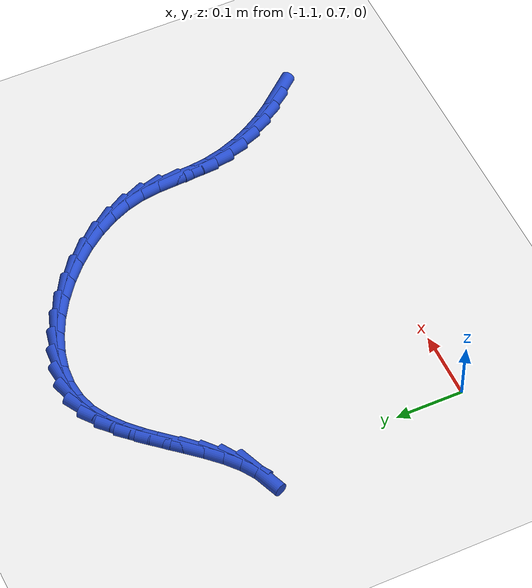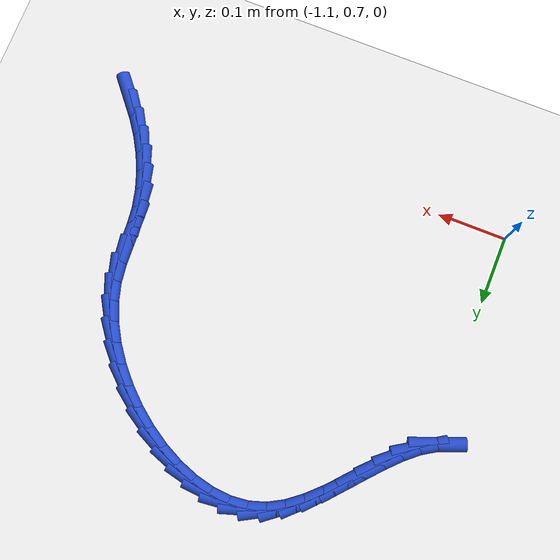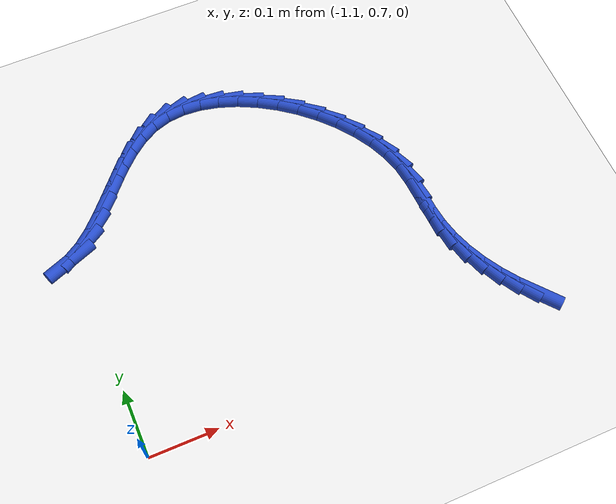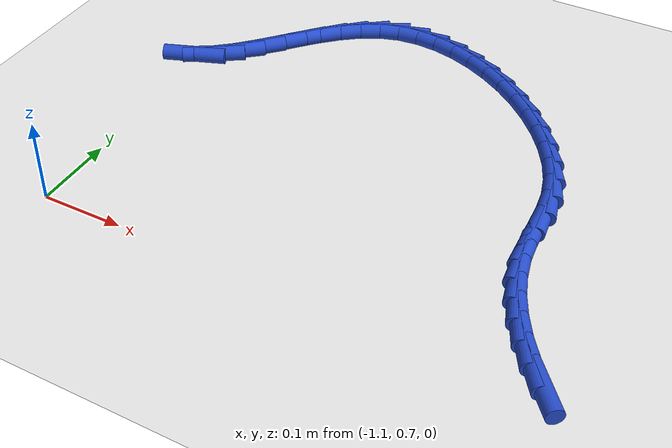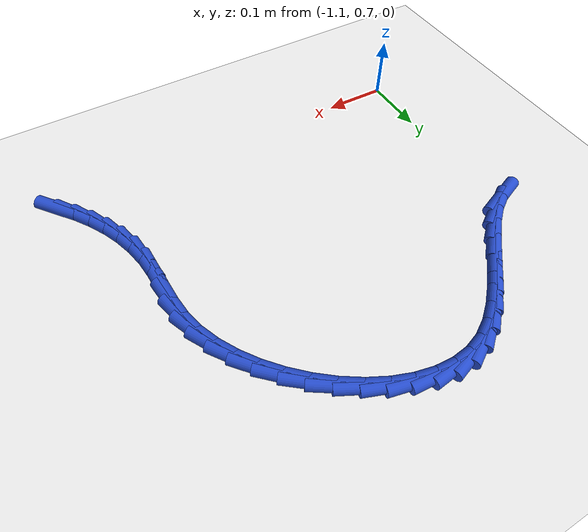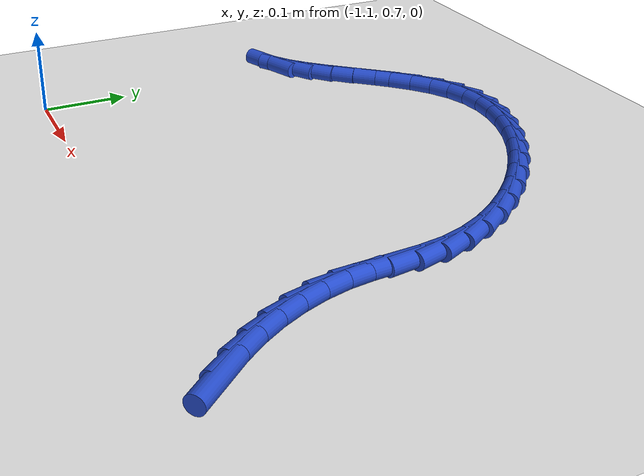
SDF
<sdf version="1.6">
 <world name="default">
  <model name="ground_plane">
   <static>1</static>
   <link name="link">
    <collision name="collision">
     <geometry><plane><normal>0 0 1</normal><size>100 100</size></plane></geometry>
     <surface><friction><ode><mu>100</mu><mu2>50</mu2></ode></friction></surface>
    </collision>
    <visual name="visual">
     <cast_shadows>0</cast_shadows>
     <geometry><plane><normal>0 0 1</normal><size>100 100</size></plane></geometry>
     <material>
      <script><uri>file://media/materials/scripts/gazebo.material</uri><name>Gazebo/WhiteGlow</name></script>
     </material>
    </visual>
   </link>
  </model>
  <model name="line">
   <link name="link_34">
    <pose>-0.5210439967725442 0.7037358276601023 0.01 0 1.57 -0.8793226241603448</pose>
    <collision name="collision">
     <geometry><cylinder><radius>0.01</radius><length>0.08</length></cylinder></geometry>
    </collision>
    <visual name="visual">
     <material>
      <script><name>Gazebo/Blue</name><uri>file://media/materials/scripts/gazebo.material</uri></script>
     </material>
     <geometry><cylinder><radius>0.01</radius><length>0.08</length></cylinder></geometry>
    </visual>
   </link>
   <link name="link_35">
    <pose>-0.5393771698662879 0.7258822442127815 0.01 0 1.57 -0.958695840897123</pose>
    <collision name="collision">
     <geometry><cylinder><radius>0.01</radius><length>0.08</length></cylinder></geometry>
    </collision>
    <visual name="visual">
     <material>
      <script><name>Gazebo/Blue</name><uri>file://media/materials/scripts/gazebo.material</uri></script>
     </material>
     <geometry><cylinder><radius>0.01</radius><length>0.08</length></cylinder></geometry>
    </visual>
   </link>
   <link name="link_36">
    <pose>-0.5557837746188089 0.7492518111957895 0.01 0 1.57 -1.0431007285317389</pose>
    <collision name="collision">
     <geometry><cylinder><radius>0.01</radius><length>0.08</length></cylinder></geometry>
    </collision>
    <visual name="visual">
     <material>
      <script><name>Gazebo/Blue</name><uri>file://media/materials/scripts/gazebo.material</uri></script>
     </material>
     <geometry><cylinder><radius>0.01</radius><length>0.08</length></cylinder></geometry>
    </visual>
   </link>
   <link name="link_37">
    <pose>-0.5700200604738206 0.7736781299357737 0.01 0 1.57 -1.1339171846215697</pose>
    <collision name="collision">
     <geometry><cylinder><radius>0.01</radius><length>0.08</length></cylinder></geometry>
    </collision>
    <visual name="visual">
     <material>
      <script><name>Gazebo/Blue</name><uri>file://media/materials/scripts/gazebo.material</uri></script>
     </material>
     <geometry><cylinder><radius>0.01</radius><length>0.08</length></cylinder></geometry>
    </visual>
   </link>
   <link name="link_38">
    <pose>-0.5818422768750369 0.7989948017593809 0.01 0 1.57 -1.2324059413170694</pose>
    <collision name="collision">
     <geometry><cylinder><radius>0.01</radius><length>0.08</length></cylinder></geometry>
    </collision>
    <visual name="visual">
     <material>
      <script><name>Gazebo/Blue</name><uri>file://media/materials/scripts/gazebo.material</uri></script>
     </material>
     <geometry><cylinder><radius>0.01</radius><length>0.08</length></cylinder></geometry>
    </visual>
   </link>
   <link name="link_39">
    <pose>-0.5910066732661715 0.8250354279932587 0.01 0 1.57 -1.3395478475320086</pose>
    <collision name="collision">
     <geometry><cylinder><radius>0.01</radius><length>0.08</length></cylinder></geometry>
    </collision>
    <visual name="visual">
     <material>
      <script><name>Gazebo/Blue</name><uri>file://media/materials/scripts/gazebo.material</uri></script>
     </material>
     <geometry><cylinder><radius>0.01</radius><length>0.08</length></cylinder></geometry>
    </visual>
   </link>
   <link name="link_40">
    <pose>-0.5972694990909383 0.8516336099640538 0.01 0 1.57 -1.4525654030089392</pose>
    <collision name="collision">
     <geometry><cylinder><radius>0.01</radius><length>0.08</length></cylinder></geometry>
    </collision>
    <visual name="visual">
     <material>
      <script><name>Gazebo/Blue</name><uri>file://media/materials/scripts/gazebo.material</uri></script>
     </material>
     <geometry><cylinder><radius>0.01</radius><length>0.08</length></cylinder></geometry>
    </visual>
   </link>
   <link name="link_41">
    <pose>-0.6004758438016128 0.8786264697778471 0.01 0 1.57 -1.5244096772551385</pose>
    <collision name="collision">
     <geometry><cylinder><radius>0.01</radius><length>0.08</length></cylinder></geometry>
    </collision>
    <visual name="visual">
     <material>
      <script><name>Gazebo/Blue</name><uri>file://media/materials/scripts/gazebo.material</uri></script>
     </material>
     <geometry><cylinder><radius>0.01</radius><length>0.08</length></cylinder></geometry>
    </visual>
   </link>
   <link name="link_42">
    <pose>-0.6017419495823003 0.9059015060373831 0.01 0 1.57 -1.5201987381754465</pose>
    <collision name="collision">
     <geometry><cylinder><radius>0.01</radius><length>0.08</length></cylinder></geometry>
    </collision>
    <visual name="visual">
     <material>
      <script><name>Gazebo/Blue</name><uri>file://media/materials/scripts/gazebo.material</uri></script>
     </material>
     <geometry><cylinder><radius>0.01</radius><length>0.08</length></cylinder></geometry>
    </visual>
   </link>
   <link name="link_43">
    <pose>-0.6031336778463012 0.9333838512887804 0.01 0 1.57 -1.4409520958502824</pose>
    <collision name="collision">
     <geometry><cylinder><radius>0.01</radius><length>0.08</length></cylinder></geometry>
    </collision>
    <visual name="visual">
     <material>
      <script><name>Gazebo/Blue</name><uri>file://media/materials/scripts/gazebo.material</uri></script>
     </material>
     <geometry><cylinder><radius>0.01</radius><length>0.08</length></cylinder></geometry>
    </visual>
   </link>
   <link name="link_44">
    <pose>-0.606739704106439 0.9609995422137358 0.01 0 1.57 -1.3008586184596633</pose>
    <collision name="collision">
     <geometry><cylinder><radius>0.01</radius><length>0.08</length></cylinder></geometry>
    </collision>
    <visual name="visual">
     <material>
      <script><name>Gazebo/Blue</name><uri>file://media/materials/scripts/gazebo.material</uri></script>
     </material>
     <geometry><cylinder><radius>0.01</radius><length>0.08</length></cylinder></geometry>
    </visual>
   </link>
   <link name="link_45">
    <pose>-0.6143878155346838 0.9886408799483685 0.01 0 1.57 -1.1615517633464194</pose>
    <collision name="collision">
     <geometry><cylinder><radius>0.01</radius><length>0.08</length></cylinder></geometry>
    </collision>
    <visual name="visual">
     <material>
      <script><name>Gazebo/Blue</name><uri>file://media/materials/scripts/gazebo.material</uri></script>
     </material>
     <geometry><cylinder><radius>0.01</radius><length>0.08</length></cylinder></geometry>
    </visual>
   </link>
   <link name="link_46">
    <pose>-0.6262482303238928 1.0159858249125362 0.01 0 1.57 -1.0412513603657656</pose>
    <collision name="collision">
     <geometry><cylinder><radius>0.01</radius><length>0.08</length></cylinder></geometry>
    </collision>
    <visual name="visual">
     <material>
      <script><name>Gazebo/Blue</name><uri>file://media/materials/scripts/gazebo.material</uri></script>
     </material>
     <geometry><cylinder><radius>0.01</radius><length>0.08</length></cylinder></geometry>
    </visual>
   </link>
   <link name="link_47">
    <pose>-0.6418423069870076 1.0426284332962898 0.01 0 1.57 -0.9349334244067018</pose>
    <collision name="collision">
     <geometry><cylinder><radius>0.01</radius><length>0.08</length></cylinder></geometry>
    </collision>
    <visual name="visual">
     <material>
      <script><name>Gazebo/Blue</name><uri>file://media/materials/scripts/gazebo.material</uri></script>
     </material>
     <geometry><cylinder><radius>0.01</radius><length>0.08</length></cylinder></geometry>
    </visual>
   </link>
   <link name="link_48">
    <pose>-0.660689894379997 1.0681625660755074 0.01 0 1.57 -0.837903470407882</pose>
    <collision name="collision">
     <geometry><cylinder><radius>0.01</radius><length>0.08</length></cylinder></geometry>
    </collision>
    <visual name="visual">
     <material>
      <script><name>Gazebo/Blue</name><uri>file://media/materials/scripts/gazebo.material</uri></script>
     </material>
     <geometry><cylinder><radius>0.01</radius><length>0.08</length></cylinder></geometry>
    </visual>
   </link>
   <link name="link_49">
    <pose>-0.6823108413588309 1.0921820842260668 0.01 0 1.57 -0.7459646770855777</pose>
    <collision name="collision">
     <geometry><cylinder><radius>0.01</radius><length>0.08</length></cylinder></geometry>
    </collision>
    <visual name="visual">
     <material>
      <script><name>Gazebo/Blue</name><uri>file://media/materials/scripts/gazebo.material</uri></script>
     </material>
     <geometry><cylinder><radius>0.01</radius><length>0.08</length></cylinder></geometry>
    </visual>
   </link>
   <link name="link_50">
    <pose>-0.7062249967794783 1.114280848723846 0.01 0 1.57 -0.6552487908555923</pose>
    <collision name="collision">
     <geometry><cylinder><radius>0.01</radius><length>0.08</length></cylinder></geometry>
    </collision>
    <visual name="visual">
     <material>
      <script><name>Gazebo/Blue</name><uri>file://media/materials/scripts/gazebo.material</uri></script>
     </material>
     <geometry><cylinder><radius>0.01</radius><length>0.08</length></cylinder></geometry>
    </visual>
   </link>
   <link name="link_51">
    <pose>-0.7319522094979085 1.134052720544723 0.01 0 1.57 -0.5619476946103579</pose>
    <collision name="collision">
     <geometry><cylinder><radius>0.01</radius><length>0.08</length></cylinder></geometry>
    </collision>
    <visual name="visual">
     <material>
      <script><name>Gazebo/Blue</name><uri>file://media/materials/scripts/gazebo.material</uri></script>
     </material>
     <geometry><cylinder><radius>0.01</radius><length>0.08</length></cylinder></geometry>
    </visual>
   </link>
   <link name="link_52">
    <pose>-0.7590123283700912 1.151091560664576 0.01 0 1.57 -0.4620192932907896</pose>
    <collision name="collision">
     <geometry><cylinder><radius>0.01</radius><length>0.08</length></cylinder></geometry>
    </collision>
    <visual name="visual">
     <material>
      <script><name>Gazebo/Blue</name><uri>file://media/materials/scripts/gazebo.material</uri></script>
     </material>
     <geometry><cylinder><radius>0.01</radius><length>0.08</length></cylinder></geometry>
    </visual>
   </link>
   <link name="link_53">
    <pose>-0.7869252022519962 1.1649912300592837 0.01 0 1.57 -0.3509154581336053</pose>
    <collision name="collision">
     <geometry><cylinder><radius>0.01</radius><length>0.08</length></cylinder></geometry>
    </collision>
    <visual name="visual">
     <material>
      <script><name>Gazebo/Blue</name><uri>file://media/materials/scripts/gazebo.material</uri></script>
     </material>
     <geometry><cylinder><radius>0.01</radius><length>0.08</length></cylinder></geometry>
    </visual>
   </link>
   <link name="link_54">
    <pose>-0.8152106799995921 1.1753455897047231 0.01 0 1.57 -0.22343731287423077</pose>
    <collision name="collision">
     <geometry><cylinder><radius>0.01</radius><length>0.08</length></cylinder></geometry>
    </collision>
    <visual name="visual">
     <material>
      <script><name>Gazebo/Blue</name><uri>file://media/materials/scripts/gazebo.material</uri></script>
     </material>
     <geometry><cylinder><radius>0.01</radius><length>0.08</length></cylinder></geometry>
    </visual>
   </link>
   <link name="link_55">
    <pose>-0.8433886104688484 1.1817485005767718 0.01 0 1.57 -0.0739967911485349</pose>
    <collision name="collision">
     <geometry><cylinder><radius>0.01</radius><length>0.08</length></cylinder></geometry>
    </collision>
    <visual name="visual">
     <material>
      <script><name>Gazebo/Blue</name><uri>file://media/materials/scripts/gazebo.material</uri></script>
     </material>
     <geometry><cylinder><radius>0.01</radius><length>0.08</length></cylinder></geometry>
    </visual>
   </link>
   <link name="link_56">
    <pose>-0.8709788425157348 1.183793823651309 0.01 0 1.57 0.10213804169180339</pose>
    <collision name="collision">
     <geometry><cylinder><radius>0.01</radius><length>0.08</length></cylinder></geometry>
    </collision>
    <visual name="visual">
     <material>
      <script><name>Gazebo/Blue</name><uri>file://media/materials/scripts/gazebo.material</uri></script>
     </material>
     <geometry><cylinder><radius>0.01</radius><length>0.08</length></cylinder></geometry>
    </visual>
   </link>
   <link name="link_57">
    <pose>-0.8975012249962204 1.1810754199042124 0.01 0 1.57 0.3057237870185091</pose>
    <collision name="collision">
     <geometry><cylinder><radius>0.01</radius><length>0.08</length></cylinder></geometry>
    </collision>
    <visual name="visual">
     <material>
      <script><name>Gazebo/Blue</name><uri>file://media/materials/scripts/gazebo.material</uri></script>
     </material>
     <geometry><cylinder><radius>0.01</radius><length>0.08</length></cylinder></geometry>
    </visual>
   </link>
   <link name="link_58">
    <pose>-0.9224782676854394 1.1731921923618858 0.01 0 1.57 0.5084165595219025</pose>
    <collision name="collision">
     <geometry><cylinder><radius>0.01</radius><length>0.08</length></cylinder></geometry>
    </collision>
    <visual name="visual">
     <material>
      <script><name>Gazebo/Blue</name><uri>file://media/materials/scripts/gazebo.material</uri></script>
     </material>
     <geometry><cylinder><radius>0.01</radius><length>0.08</length></cylinder></geometry>
    </visual>
   </link>
   <link name="link_59">
    <pose>-0.9457004860533058 1.1602508754318395 0.01 0 1.57 0.6621634413331473</pose>
    <collision name="collision">
     <geometry><cylinder><radius>0.01</radius><length>0.08</length></cylinder></geometry>
    </collision>
    <visual name="visual">
     <material>
      <script><name>Gazebo/Blue</name><uri>file://media/materials/scripts/gazebo.material</uri></script>
     </material>
     <geometry><cylinder><radius>0.01</radius><length>0.08</length></cylinder></geometry>
    </visual>
   </link>
   <link name="link_60">
    <pose>-0.9674521410644032 1.1432937786282185 0.01 0 1.57 0.7659020343018577</pose>
    <collision name="collision">
     <geometry><cylinder><radius>0.01</radius><length>0.08</length></cylinder></geometry>
    </collision>
    <visual name="visual">
     <material>
      <script><name>Gazebo/Blue</name><uri>file://media/materials/scripts/gazebo.material</uri></script>
     </material>
     <geometry><cylinder><radius>0.01</radius><length>0.08</length></cylinder></geometry>
    </visual>
   </link>
   <link name="link_61">
    <pose>-0.9880706572309484 1.1234639485701832 0.01 0 1.57 0.8273411087327771</pose>
    <collision name="collision">
     <geometry><cylinder><radius>0.01</radius><length>0.08</length></cylinder></geometry>
    </collision>
    <visual name="visual">
     <material>
      <script><name>Gazebo/Blue</name><uri>file://media/materials/scripts/gazebo.material</uri></script>
     </material>
     <geometry><cylinder><radius>0.01</radius><length>0.08</length></cylinder></geometry>
    </visual>
   </link>
   <link name="link_62">
    <pose>-1.0078934590651611 1.1019044318768954 0.01 0 1.57 0.8523084880905474</pose>
    <collision name="collision">
     <geometry><cylinder><radius>0.01</radius><length>0.08</length></cylinder></geometry>
    </collision>
    <visual name="visual">
     <material>
      <script><name>Gazebo/Blue</name><uri>file://media/materials/scripts/gazebo.material</uri></script>
     </material>
     <geometry><cylinder><radius>0.01</radius><length>0.08</length></cylinder></geometry>
    </visual>
   </link>
   <link name="link_63">
    <pose>-1.0272579710792586 1.0797582751675154 0.01 0 1.57 0.8427905696882132</pose>
    <collision name="collision">
     <geometry><cylinder><radius>0.01</radius><length>0.08</length></cylinder></geometry>
    </collision>
    <visual name="visual">
     <material>
      <script><name>Gazebo/Blue</name><uri>file://media/materials/scripts/gazebo.material</uri></script>
     </material>
     <geometry><cylinder><radius>0.01</radius><length>0.08</length></cylinder></geometry>
    </visual>
   </link>
   <link name="link_64">
    <pose>-1.0465016177854598 1.0581685250612052 0.01 0 1.57 0.7963274735235107</pose>
    <collision name="collision">
     <geometry><cylinder><radius>0.01</radius><length>0.08</length></cylinder></geometry>
    </collision>
    <visual name="visual">
     <material>
      <script><name>Gazebo/Blue</name><uri>file://media/materials/scripts/gazebo.material</uri></script>
     </material>
     <geometry><cylinder><radius>0.01</radius><length>0.08</length></cylinder></geometry>
    </visual>
   </link>
   <link name="link_65">
    <pose>-1.065961823695982 1.0382782281771248 0.01 0 1.57 0.7055297412838324</pose>
    <collision name="collision">
     <geometry><cylinder><radius>0.01</radius><length>0.08</length></cylinder></geometry>
    </collision>
    <visual name="visual">
     <material>
      <script><name>Gazebo/Blue</name><uri>file://media/materials/scripts/gazebo.material</uri></script>
     </material>
     <geometry><cylinder><radius>0.01</radius><length>0.08</length></cylinder></geometry>
    </visual>
   </link>
   <link name="link_66">
    <pose>-1.085976013323044 1.0212304311344356 0.01 0 1.57 0.5585465601877885</pose>
    <collision name="collision">
     <geometry><cylinder><radius>0.01</radius><length>0.08</length></cylinder></geometry>
    </collision>
    <visual name="visual">
     <material>
      <script><name>Gazebo/Blue</name><uri>file://media/materials/scripts/gazebo.material</uri></script>
     </material>
     <geometry><cylinder><radius>0.01</radius><length>0.08</length></cylinder></geometry>
    </visual>
   </link>
   <link name="link_67">
    <pose>-1.1068811516995045 1.0081662532546927 0.01 0 1.57 0.36481598754508787</pose>
    <collision name="collision">
     <geometry><cylinder><radius>0.01</radius><length>0.08</length></cylinder></geometry>
    </collision>
    <visual name="visual">
     <material>
      <script><name>Gazebo/Blue</name><uri>file://media/materials/scripts/gazebo.material</uri></script>
     </material>
     <geometry><cylinder><radius>0.01</radius><length>0.08</length></cylinder></geometry>
    </visual>
   </link>
  </model>
 </world>
</sdf>
